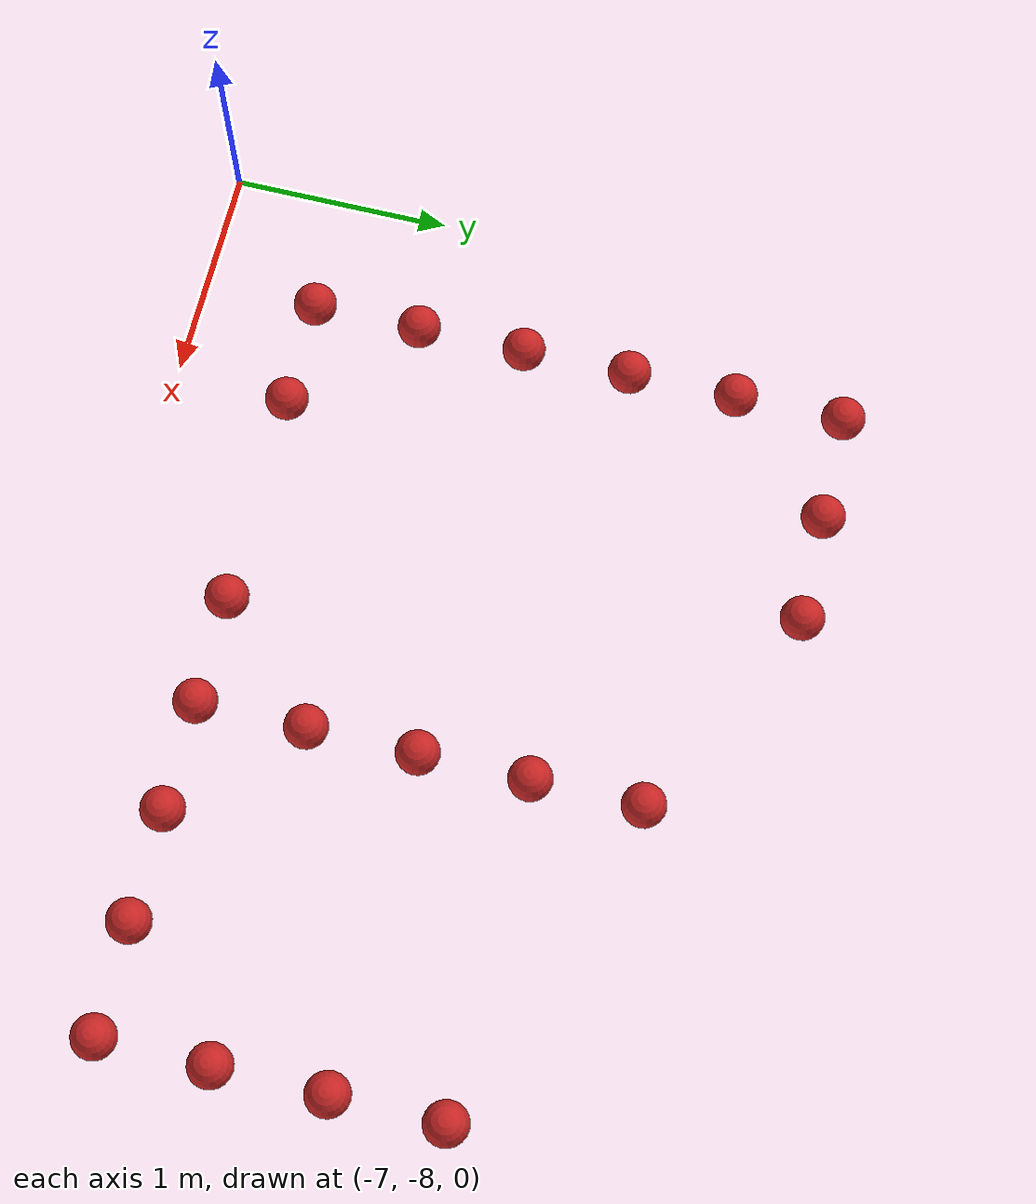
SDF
<sdf version="1.6">
 <model name="level1">
  <link name="Score_Point1">
   <collision name="Score_Point_Collision1">
    <geometry><sphere><radius>0.1</radius></sphere></geometry>
   </collision>
   <visual name="Score_Point_Visual1">
    <geometry><sphere><radius>0.1</radius></sphere></geometry>
    <material>
     <script><uri>file://media/materials/scripts/gazebo.material</uri><name>Gazebo/Red</name></script>
     <ambient>1 1 1 1</ambient>
    </material>
    <meta><layer>0</layer></meta>
   </visual>
   <pose>-6.5 -7.5 -0.08 0 0 0</pose>
   <script><uri>file://scripts/score_point_script.py</uri></script>
  </link>
  <link name="Score_Point2">
   <collision name="Score_Point_Collision2">
    <geometry><sphere><radius>0.1</radius></sphere></geometry>
   </collision>
   <visual name="Score_Point_Visual2">
    <geometry><sphere><radius>0.1</radius></sphere></geometry>
    <material>
     <script><uri>file://media/materials/scripts/gazebo.material</uri><name>Gazebo/Red</name></script>
     <ambient>1 1 1 1</ambient>
    </material>
    <meta><layer>0</layer></meta>
   </visual>
   <pose>-6.5 -7.0 -0.08 0 0 0</pose>
   <script><uri>file://scripts/score_point_script.py</uri></script>
  </link>
  <link name="Score_Point3">
   <collision name="Score_Point_Collision3">
    <geometry><sphere><radius>0.1</radius></sphere></geometry>
   </collision>
   <visual name="Score_Point_Visual3">
    <geometry><sphere><radius>0.1</radius></sphere></geometry>
    <material>
     <script><uri>file://media/materials/scripts/gazebo.material</uri><name>Gazebo/Red</name></script>
     <ambient>1 1 1 1</ambient>
    </material>
    <meta><layer>0</layer></meta>
   </visual>
   <pose>-6.5 -6.5 -0.08 0 0 0</pose>
   <script><uri>file://scripts/score_point_script.py</uri></script>
  </link>
  <link name="Score_Point4">
   <collision name="Score_Point_Collision4">
    <geometry><sphere><radius>0.1</radius></sphere></geometry>
   </collision>
   <visual name="Score_Point_Visual4">
    <geometry><sphere><radius>0.1</radius></sphere></geometry>
    <material>
     <script><uri>file://media/materials/scripts/gazebo.material</uri><name>Gazebo/Red</name></script>
     <ambient>1 1 1 1</ambient>
    </material>
    <meta><layer>0</layer></meta>
   </visual>
   <pose>-6.5 -6.0 -0.08 0 0 0</pose>
   <script><uri>file://scripts/score_point_script.py</uri></script>
  </link>
  <link name="Score_Point5">
   <collision name="Score_Point_Collision5">
    <geometry><sphere><radius>0.1</radius></sphere></geometry>
   </collision>
   <visual name="Score_Point_Visual5">
    <geometry><sphere><radius>0.1</radius></sphere></geometry>
    <material>
     <script><uri>file://media/materials/scripts/gazebo.material</uri><name>Gazebo/Red</name></script>
     <ambient>1 1 1 1</ambient>
    </material>
    <meta><layer>0</layer></meta>
   </visual>
   <pose>-6.5 -5.5 -0.08 0 0 0</pose>
   <script><uri>file://scripts/score_point_script.py</uri></script>
  </link>
  <link name="Score_Point6">
   <collision name="Score_Point_Collision6">
    <geometry><sphere><radius>0.1</radius></sphere></geometry>
   </collision>
   <visual name="Score_Point_Visual6">
    <geometry><sphere><radius>0.1</radius></sphere></geometry>
    <material>
     <script><uri>file://media/materials/scripts/gazebo.material</uri><name>Gazebo/Red</name></script>
     <ambient>1 1 1 1</ambient>
    </material>
    <meta><layer>0</layer></meta>
   </visual>
   <pose>-6.5 -5.0 -0.08 0 0 0</pose>
   <script><uri>file://scripts/score_point_script.py</uri></script>
  </link>
  <link name="Score_Point25">
   <collision name="Score_Point_Collision25">
    <geometry><sphere><radius>0.1</radius></sphere></geometry>
   </collision>
   <visual name="Score_Point_Visual25">
    <geometry><sphere><radius>0.1</radius></sphere></geometry>
    <material>
     <script><uri>file://media/materials/scripts/gazebo.material</uri><name>Gazebo/Red</name></script>
     <ambient>1 1 1 1</ambient>
    </material>
    <meta><layer>0</layer></meta>
   </visual>
   <pose>-6.0 -7.5 -0.08 0 0 0</pose>
   <script><uri>file://scripts/score_point_script.py</uri></script>
  </link>
  <link name="Score_Point26">
   <collision name="Score_Point_Collision26">
    <geometry><sphere><radius>0.1</radius></sphere></geometry>
   </collision>
   <visual name="Score_Point_Visual26">
    <geometry><sphere><radius>0.1</radius></sphere></geometry>
    <material>
     <script><uri>file://media/materials/scripts/gazebo.material</uri><name>Gazebo/Red</name></script>
     <ambient>1 1 1 1</ambient>
    </material>
    <meta><layer>0</layer></meta>
   </visual>
   <pose>-6.0 -5.0 -0.08 0 0 0</pose>
   <script><uri>file://scripts/score_point_script.py</uri></script>
  </link>
  <link name="Score_Point31">
   <collision name="Score_Point_Collision31">
    <geometry><sphere><radius>0.1</radius></sphere></geometry>
   </collision>
   <visual name="Score_Point_Visual31">
    <geometry><sphere><radius>0.1</radius></sphere></geometry>
    <material>
     <script><uri>file://media/materials/scripts/gazebo.material</uri><name>Gazebo/Red</name></script>
     <ambient>1 1 1 1</ambient>
    </material>
    <meta><layer>0</layer></meta>
   </visual>
   <pose>-5.5 -5.0 -0.08 0 0 0</pose>
   <script><uri>file://scripts/score_point_script.py</uri></script>
  </link>
  <link name="Score_Point35">
   <collision name="Score_Point_Collision35">
    <geometry><sphere><radius>0.1</radius></sphere></geometry>
   </collision>
   <visual name="Score_Point_Visual35">
    <geometry><sphere><radius>0.1</radius></sphere></geometry>
    <material>
     <script><uri>file://media/materials/scripts/gazebo.material</uri><name>Gazebo/Red</name></script>
     <ambient>1 1 1 1</ambient>
    </material>
    <meta><layer>0</layer></meta>
   </visual>
   <pose>-5.0 -7.5 -0.08 0 0 0</pose>
   <script><uri>file://scripts/score_point_script.py</uri></script>
  </link>
  <link name="Score_Point41">
   <collision name="Score_Point_Collision41">
    <geometry><sphere><radius>0.1</radius></sphere></geometry>
   </collision>
   <visual name="Score_Point_Visual41">
    <geometry><sphere><radius>0.1</radius></sphere></geometry>
    <material>
     <script><uri>file://media/materials/scripts/gazebo.material</uri><name>Gazebo/Red</name></script>
     <ambient>1 1 1 1</ambient>
    </material>
    <meta><layer>0</layer></meta>
   </visual>
   <pose>-4.5 -7.5 -0.08 0 0 0</pose>
   <script><uri>file://scripts/score_point_script.py</uri></script>
  </link>
  <link name="Score_Point42">
   <collision name="Score_Point_Collision42">
    <geometry><sphere><radius>0.1</radius></sphere></geometry>
   </collision>
   <visual name="Score_Point_Visual42">
    <geometry><sphere><radius>0.1</radius></sphere></geometry>
    <material>
     <script><uri>file://media/materials/scripts/gazebo.material</uri><name>Gazebo/Red</name></script>
     <ambient>1 1 1 1</ambient>
    </material>
    <meta><layer>0</layer></meta>
   </visual>
   <pose>-4.5 -7.0 -0.08 0 0 0</pose>
   <script><uri>file://scripts/score_point_script.py</uri></script>
  </link>
  <link name="Score_Point43">
   <collision name="Score_Point_Collision43">
    <geometry><sphere><radius>0.1</radius></sphere></geometry>
   </collision>
   <visual name="Score_Point_Visual43">
    <geometry><sphere><radius>0.1</radius></sphere></geometry>
    <material>
     <script><uri>file://media/materials/scripts/gazebo.material</uri><name>Gazebo/Red</name></script>
     <ambient>1 1 1 1</ambient>
    </material>
    <meta><layer>0</layer></meta>
   </visual>
   <pose>-4.5 -6.5 -0.08 0 0 0</pose>
   <script><uri>file://scripts/score_point_script.py</uri></script>
  </link>
  <link name="Score_Point44">
   <collision name="Score_Point_Collision44">
    <geometry><sphere><radius>0.1</radius></sphere></geometry>
   </collision>
   <visual name="Score_Point_Visual44">
    <geometry><sphere><radius>0.1</radius></sphere></geometry>
    <material>
     <script><uri>file://media/materials/scripts/gazebo.material</uri><name>Gazebo/Red</name></script>
     <ambient>1 1 1 1</ambient>
    </material>
    <meta><layer>0</layer></meta>
   </visual>
   <pose>-4.5 -6.0 -0.08 0 0 0</pose>
   <script><uri>file://scripts/score_point_script.py</uri></script>
  </link>
  <link name="Score_Point45">
   <collision name="Score_Point_Collision45">
    <geometry><sphere><radius>0.1</radius></sphere></geometry>
   </collision>
   <visual name="Score_Point_Visual45">
    <geometry><sphere><radius>0.1</radius></sphere></geometry>
    <material>
     <script><uri>file://media/materials/scripts/gazebo.material</uri><name>Gazebo/Red</name></script>
     <ambient>1 1 1 1</ambient>
    </material>
    <meta><layer>0</layer></meta>
   </visual>
   <pose>-4.5 -5.5 -0.08 0 0 0</pose>
   <script><uri>file://scripts/score_point_script.py</uri></script>
  </link>
  <link name="Score_Point67">
   <collision name="Score_Point_Collision67">
    <geometry><sphere><radius>0.1</radius></sphere></geometry>
   </collision>
   <visual name="Score_Point_Visual67">
    <geometry><sphere><radius>0.1</radius></sphere></geometry>
    <material>
     <script><uri>file://media/materials/scripts/gazebo.material</uri><name>Gazebo/Red</name></script>
     <ambient>1 1 1 1</ambient>
    </material>
    <meta><layer>0</layer></meta>
   </visual>
   <pose>-4.0 -7.5 -0.08 0 0 0</pose>
   <script><uri>file://scripts/score_point_script.py</uri></script>
  </link>
  <link name="Score_Point73">
   <collision name="Score_Point_Collision73">
    <geometry><sphere><radius>0.1</radius></sphere></geometry>
   </collision>
   <visual name="Score_Point_Visual73">
    <geometry><sphere><radius>0.1</radius></sphere></geometry>
    <material>
     <script><uri>file://media/materials/scripts/gazebo.material</uri><name>Gazebo/Red</name></script>
     <ambient>1 1 1 1</ambient>
    </material>
    <meta><layer>0</layer></meta>
   </visual>
   <pose>-3.5 -7.5 -0.08 0 0 0</pose>
   <script><uri>file://scripts/score_point_script.py</uri></script>
  </link>
  <link name="Score_Point79">
   <collision name="Score_Point_Collision79">
    <geometry><sphere><radius>0.1</radius></sphere></geometry>
   </collision>
   <visual name="Score_Point_Visual79">
    <geometry><sphere><radius>0.1</radius></sphere></geometry>
    <material>
     <script><uri>file://media/materials/scripts/gazebo.material</uri><name>Gazebo/Red</name></script>
     <ambient>1 1 1 1</ambient>
    </material>
    <meta><layer>0</layer></meta>
   </visual>
   <pose>-3.0 -7.5 -0.08 0 0 0</pose>
   <script><uri>file://scripts/score_point_script.py</uri></script>
  </link>
  <link name="Score_Point80">
   <collision name="Score_Point_Collision80">
    <geometry><sphere><radius>0.1</radius></sphere></geometry>
   </collision>
   <visual name="Score_Point_Visual80">
    <geometry><sphere><radius>0.1</radius></sphere></geometry>
    <material>
     <script><uri>file://media/materials/scripts/gazebo.material</uri><name>Gazebo/Red</name></script>
     <ambient>1 1 1 1</ambient>
    </material>
    <meta><layer>0</layer></meta>
   </visual>
   <pose>-3.0 -7.0 -0.08 0 0 0</pose>
   <script><uri>file://scripts/score_point_script.py</uri></script>
  </link>
  <link name="Score_Point81">
   <collision name="Score_Point_Collision81">
    <geometry><sphere><radius>0.1</radius></sphere></geometry>
   </collision>
   <visual name="Score_Point_Visual81">
    <geometry><sphere><radius>0.1</radius></sphere></geometry>
    <material>
     <script><uri>file://media/materials/scripts/gazebo.material</uri><name>Gazebo/Red</name></script>
     <ambient>1 1 1 1</ambient>
    </material>
    <meta><layer>0</layer></meta>
   </visual>
   <pose>-3.0 -6.5 -0.08 0 0 0</pose>
   <script><uri>file://scripts/score_point_script.py</uri></script>
  </link>
  <link name="Score_Point82">
   <collision name="Score_Point_Collision82">
    <geometry><sphere><radius>0.1</radius></sphere></geometry>
   </collision>
   <visual name="Score_Point_Visual82">
    <geometry><sphere><radius>0.1</radius></sphere></geometry>
    <material>
     <script><uri>file://media/materials/scripts/gazebo.material</uri><name>Gazebo/Red</name></script>
     <ambient>1 1 1 1</ambient>
    </material>
    <meta><layer>0</layer></meta>
   </visual>
   <pose>-3.0 -6.0 -0.08 0 0 0</pose>
   <script><uri>file://scripts/score_point_script.py</uri></script>
  </link>
  <static>1</static>
 </model>
</sdf>
